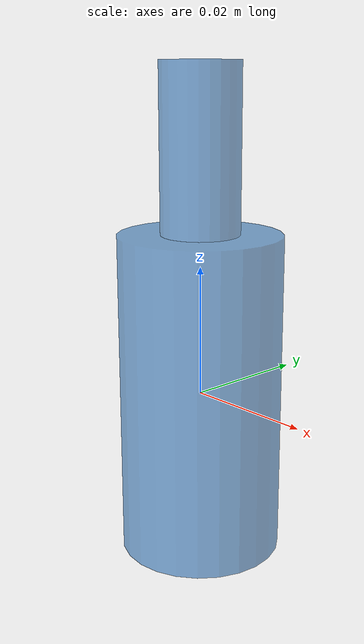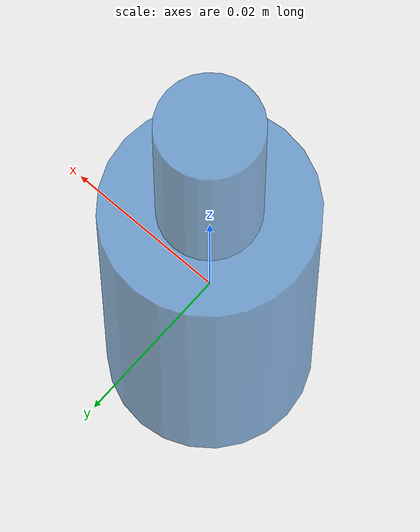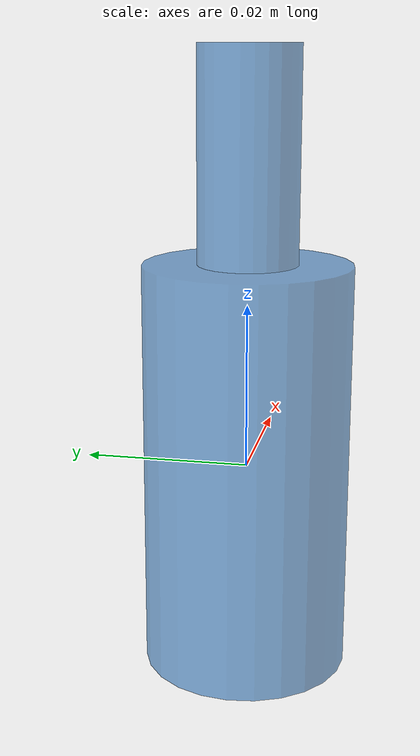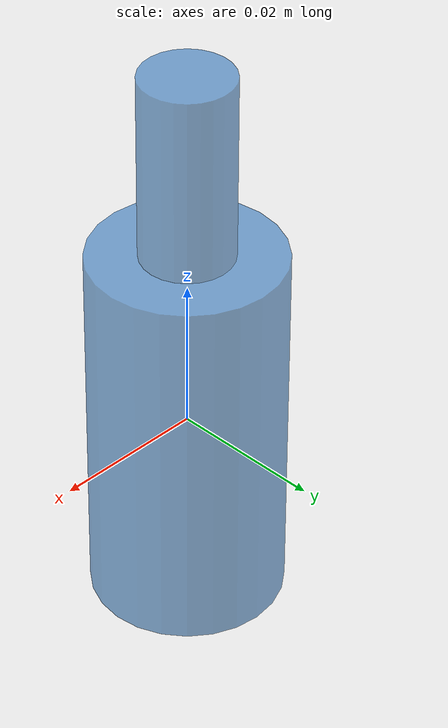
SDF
<?xml version="1.0"?>
<!-- Dechet "bouteille plastique" : corps cylindre Ø0.025 x 0.05 + col Ø0.012 x 0.025,
     bleu translucide, ~0.02 kg. Classe plastic. Inertie ~ cylindre equivalent. -->
<sdf version="1.9">
  <model name="waste_bottle">
    <link name="link">
      <inertial>
        <mass>0.02</mass>
        <inertia>
          <ixx>8.95e-6</ixx><iyy>8.95e-6</iyy><izz>1.56e-6</izz>
          <ixy>0</ixy><ixz>0</ixz><iyz>0</iyz>
        </inertia>
      </inertial>
      <!-- Corps -->
      <collision name="body_col">
        <pose>0 0 0 0 0 0</pose>
        <geometry><cylinder><radius>0.0125</radius><length>0.05</length></cylinder></geometry>
      </collision>
      <visual name="body_vis">
        <pose>0 0 0 0 0 0</pose>
        <geometry><cylinder><radius>0.0125</radius><length>0.05</length></cylinder></geometry>
        <material>
          <ambient>0.10 0.30 0.55 0.6</ambient>
          <diffuse>0.15 0.45 0.75 0.6</diffuse>
          <specular>0.3 0.3 0.3 1</specular>
          <transparency>0.35</transparency>
        </material>
      </visual>
      <!-- Col (au-dessus du corps) -->
      <collision name="neck_col">
        <pose>0 0 0.0375 0 0 0</pose>
        <geometry><cylinder><radius>0.006</radius><length>0.025</length></cylinder></geometry>
      </collision>
      <visual name="neck_vis">
        <pose>0 0 0.0375 0 0 0</pose>
        <geometry><cylinder><radius>0.006</radius><length>0.025</length></cylinder></geometry>
        <material>
          <ambient>0.10 0.30 0.55 0.6</ambient>
          <diffuse>0.15 0.45 0.75 0.6</diffuse>
          <transparency>0.35</transparency>
        </material>
      </visual>
    </link>
  </model>
</sdf>
